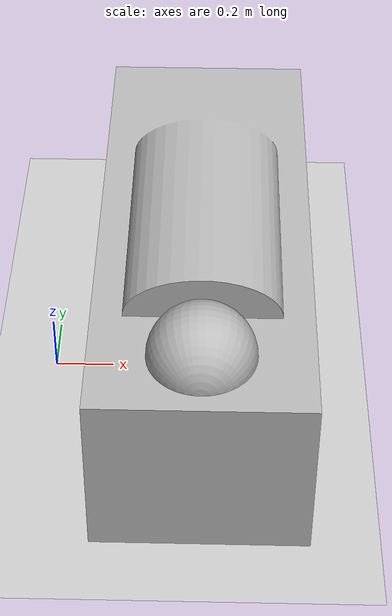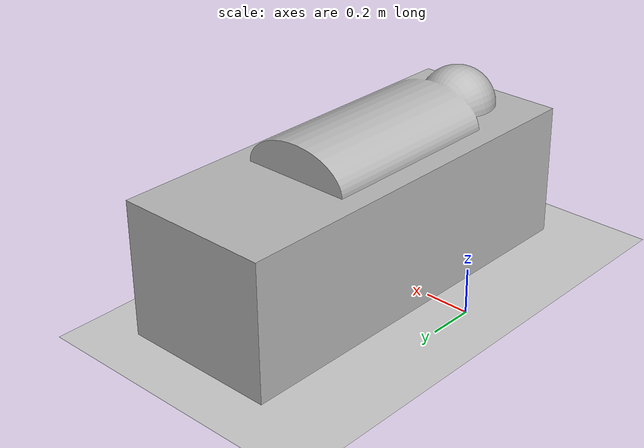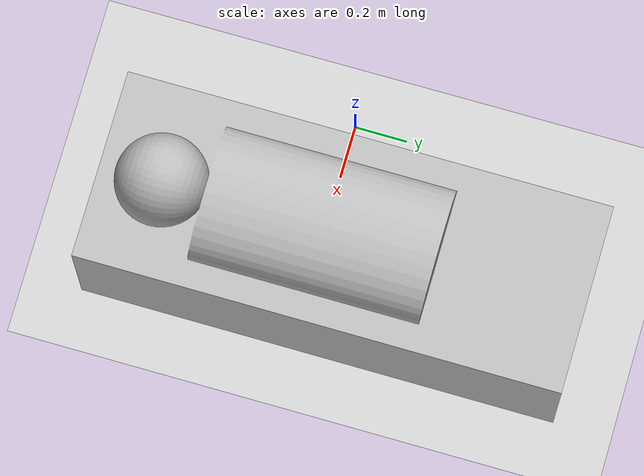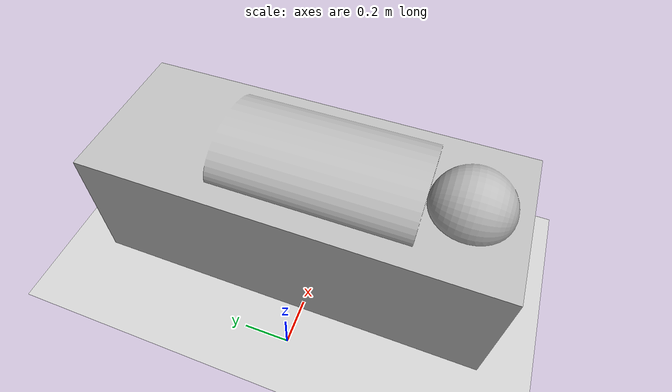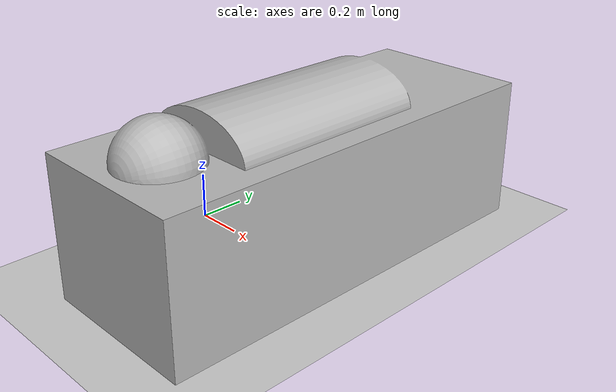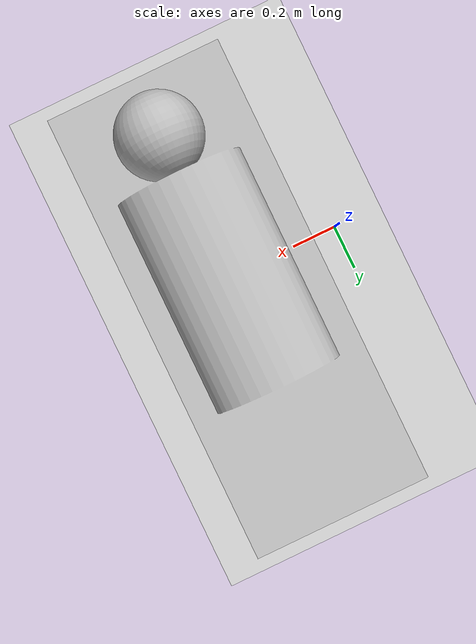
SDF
<?xml version="1.0" ?>
<sdf version="1.5">
  <world name="default">
    <include>
      <uri>model://sun</uri>
    </include>
    <include>
      <uri>model://ground_plane</uri>
    </include>

    <include>
      <uri>model://patient</uri>
      <pose>0.87 1.0 0 0 0 3.14</pose>
    </include>

  </world>
</sdf>

    <include>
      <uri>model://bed</uri>
      <pose>0.3 0.15 0 0 0 0</pose>
    </include>

    <include>
      <uri>model://echo</uri>
      <pose>1.45 -1.8 0 0 0 1.53</pose>
    </include>

       <include>
      <uri>model://echo</uri>
      <pose>1.4 -1.9 0 0 0 1.53</pose>
    </include>

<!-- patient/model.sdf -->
<sdf version="1.4">
<model name="patient">
  <pose>0 0 0 0 0 0</pose>
    <link name="link">
      <inertial>
        <mass>100</mass>
        <inertia>
          <ixx>0.001</ixx>
          <ixy>0.0</ixy>
          <ixz>0.0</ixz>
          <iyy>0.001</iyy>
          <iyz>0.0</iyz>
          <izz>0.001</izz>
        </inertia>
      </inertial>
      <collision name="collision">
        <geometry>
          <mesh>
            <uri>model://patient/patient_ab1.STL</uri>
          </mesh>
        </geometry>
      </collision>
      <visual name="visual">
        <geometry>
          <mesh>
            <uri>model://patient/patient_ab1.STL</uri>
          </mesh>
        </geometry>
      </visual>
    </link>
  </model>
</sdf>
